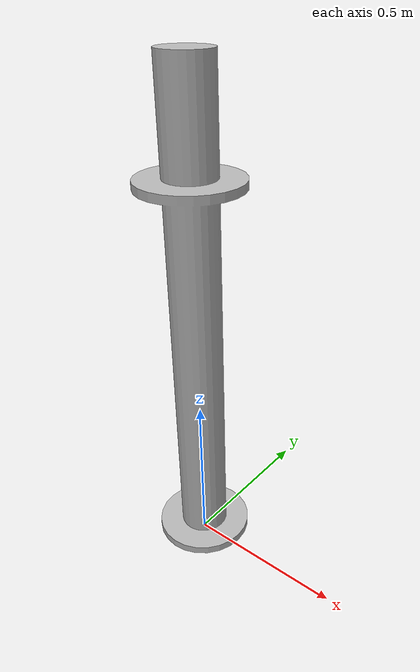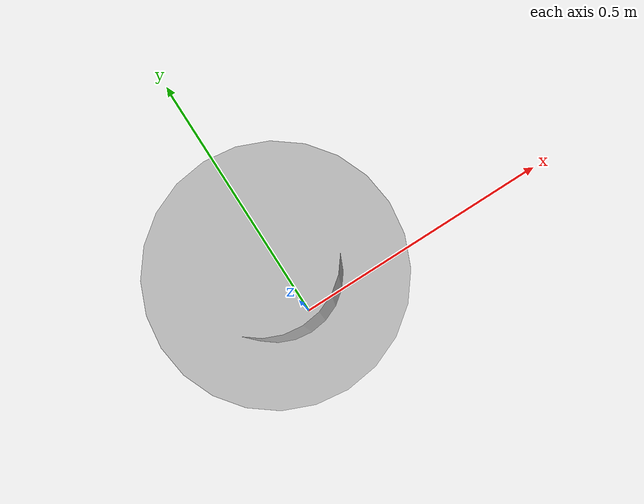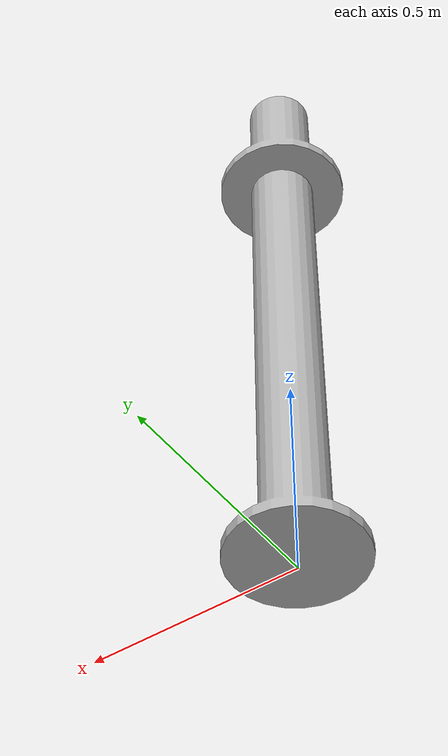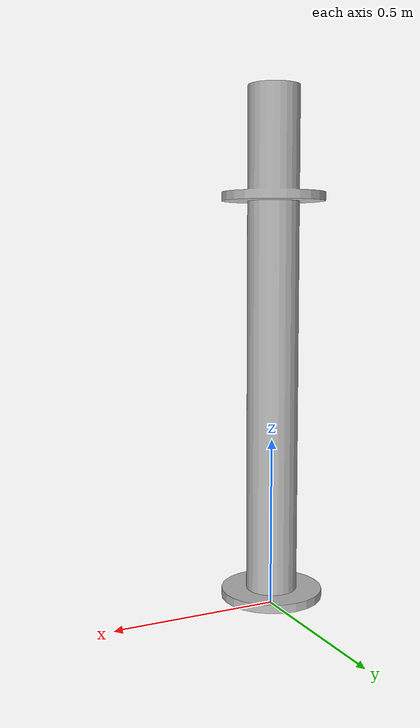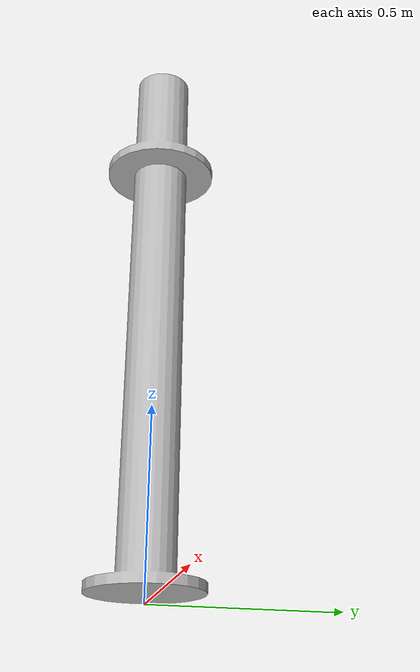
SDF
<?xml version="1.0"?>
<sdf version="1.6">
  <model name="abu_pole_big">
      <pose>0 0 0  0 0 0</pose>
      <static>true</static>
      <link name="body">
        <visual name="visual">
          <geometry>
		  <mesh><uri>model://abu_pole_big/meshes/abu_pole_big.dae</uri></mesh>
          </geometry>
        </visual>
      </link>
 </model>
</sdf>
